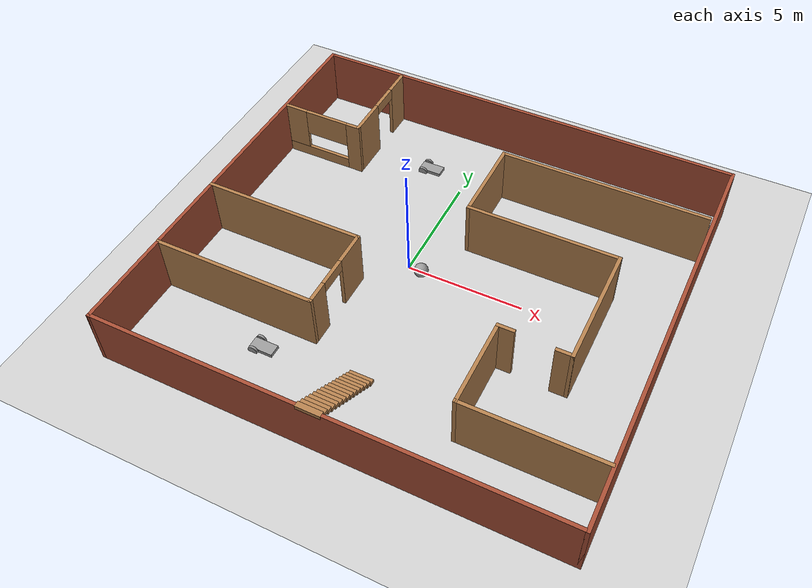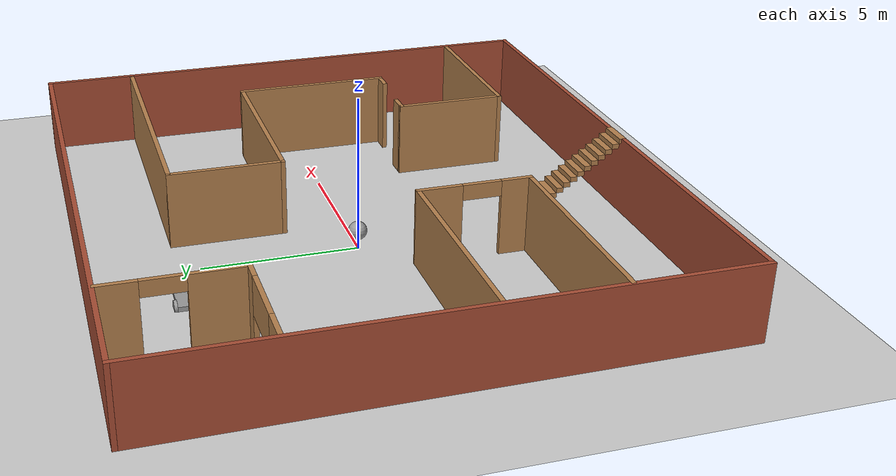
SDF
<sdf version="1.7">
 <world name="default">
  <light name="sun" type="directional">
   <pose>0 0 10 0 -0 0</pose>
   <diffuse>0.8 0.8 0.8 1</diffuse>
   <specular>0.2 0.2 0.2 1</specular>
   <attenuation>
    <range>1000</range>
    <constant>0.9</constant>
    <linear>0.01</linear>
    <quadratic>0.001</quadratic>
   </attenuation>
   <direction>-0.5 0.1 -0.9</direction>
  </light>
  <model name="ground_plane">
   <static>1</static>
   <link name="link">
    <collision name="collision">
     <geometry><plane><normal>0 0 1</normal><size>100 100</size></plane></geometry>
     <surface>
      <contact><collide_bitmask>65535</collide_bitmask></contact>
      <friction><ode><mu>100</mu><mu2>50</mu2></ode></friction>
     </surface>
    </collision>
    <visual name="visual">
     <cast_shadows>0</cast_shadows>
     <geometry><plane><normal>0 0 1</normal><size>100 100</size></plane></geometry>
     <material>
      <script><uri>file://media/materials/scripts/gazebo.material</uri><name>Gazebo/Grey</name></script>
     </material>
    </visual>
   </link>
  </model>
  <gravity>0 0 -9.8</gravity>
  <magnetic_field>6e-06 2.3e-05 -4.2e-05</magnetic_field>
  <atmosphere type="adiabatic"/>
  <physics type="ode">
   <max_step_size>0.001</max_step_size>
   <real_time_factor>1</real_time_factor>
   <real_time_update_rate>1000</real_time_update_rate>
  </physics>
  <scene><ambient>0.4 0.4 0.4 1</ambient><background>0.7 0.7 0.7 1</background><shadows>1</shadows></scene>
  <spherical_coordinates>
   <surface_model>EARTH_WGS84</surface_model>
   <latitude_deg>0</latitude_deg>
   <longitude_deg>0</longitude_deg>
   <elevation>0</elevation>
   <heading_deg>0</heading_deg>
  </spherical_coordinates>
  <model name="my_ball">
   <link name="link_0">
    <inertial>
     <mass>0.0751164</mass>
     <inertia>
      <ixx>0.00133722</ixx>
      <ixy>0</ixy>
      <ixz>0</ixz>
      <iyy>0.00133722</iyy>
      <iyz>0</iyz>
      <izz>0.00133722</izz>
     </inertia>
    </inertial>
    <visual name="visual">
     <geometry><sphere><radius>0.3</radius></sphere></geometry>
     <material>
      <lighting>1</lighting>
      <script><uri>file://media/materials/scripts/gazebo.material</uri><name>Gazebo/Grey</name></script>
      <shader type="pixel"><normal_map>__default__</normal_map></shader>
      <ambient>1 1 1 1</ambient>
      <diffuse>1 1 1 1</diffuse>
      <specular>1 1 1 1</specular>
      <emissive>1 1 1 1</emissive>
     </material>
    </visual>
    <collision name="collision">
     <geometry><sphere><radius>0.3</radius></sphere></geometry>
     <surface>
      <friction>
       <ode><mu>1</mu><mu2>1</mu2><fdir1>0 0 0</fdir1><slip1>0</slip1><slip2>0</slip2></ode>
       <torsional>
        <coefficient>1</coefficient>
        <patch_radius>0</patch_radius>
        <surface_radius>0</surface_radius>
        <use_patch_radius>1</use_patch_radius>
        <ode><slip>0</slip></ode>
       </torsional>
      </friction>
      <bounce><restitution_coefficient>0</restitution_coefficient><threshold>1e+06</threshold></bounce>
      <contact>
       <collide_without_contact>0</collide_without_contact>
       <collide_without_contact_bitmask>1</collide_without_contact_bitmask>
       <collide_bitmask>1</collide_bitmask>
       <ode>
        <soft_cfm>0</soft_cfm>
        <soft_erp>0.2</soft_erp>
        <kp>1e+13</kp>
        <kd>1</kd>
        <max_vel>0.01</max_vel>
        <min_depth>0</min_depth>
       </ode>
       <bullet>
        <split_impulse>1</split_impulse>
        <split_impulse_penetration_threshold>-0.01</split_impulse_penetration_threshold>
        <soft_cfm>0</soft_cfm>
        <soft_erp>0.2</soft_erp>
        <kp>1e+13</kp>
        <kd>1</kd>
       </bullet>
      </contact>
     </surface>
    </collision>
   </link>
   <static>0</static>
   <pose>0.63398 -0.150036 0.3 0 -0 0</pose>
  </model>
  <model name="Building">
   <pose>1.22774 -0.299853 0 0 -0 0</pose>
   <link name="Stairs_0">
    <visual name="Stairs_0_Visual_0">
     <pose>-0.309211 -5.49663 0.083333 0 -0 0</pose>
     <geometry><box><size>1 0.233333 0.166667</size></box></geometry>
     <material>
      <script><uri>file://media/materials/scripts/gazebo.material</uri><name>Gazebo/Wood</name></script>
      <ambient>1 1 1 1</ambient>
     </material>
     <meta><layer>0</layer></meta>
    </visual>
    <collision name="Stairs_0_Collision_0">
     <geometry><box><size>1 0.233333 0.166667</size></box></geometry>
     <pose>-0.309211 -5.49663 0.083333 0 -0 0</pose>
    </collision>
    <visual name="Stairs_0_Visual_1">
     <pose>-0.309211 -5.72996 0.25 0 -0 0</pose>
     <geometry><box><size>1 0.233333 0.166667</size></box></geometry>
     <material>
      <script><uri>file://media/materials/scripts/gazebo.material</uri><name>Gazebo/Wood</name></script>
      <ambient>1 1 1 1</ambient>
     </material>
     <meta><layer>0</layer></meta>
    </visual>
    <collision name="Stairs_0_Collision_1">
     <geometry><box><size>1 0.233333 0.166667</size></box></geometry>
     <pose>-0.309211 -5.72996 0.25 0 -0 0</pose>
    </collision>
    <visual name="Stairs_0_Visual_2">
     <pose>-0.309211 -5.96329 0.416667 0 -0 0</pose>
     <geometry><box><size>1 0.233333 0.166667</size></box></geometry>
     <material>
      <script><uri>file://media/materials/scripts/gazebo.material</uri><name>Gazebo/Wood</name></script>
      <ambient>1 1 1 1</ambient>
     </material>
     <meta><layer>0</layer></meta>
    </visual>
    <collision name="Stairs_0_Collision_2">
     <geometry><box><size>1 0.233333 0.166667</size></box></geometry>
     <pose>-0.309211 -5.96329 0.416667 0 -0 0</pose>
    </collision>
    <visual name="Stairs_0_Visual_3">
     <pose>-0.309211 -6.19663 0.583333 0 -0 0</pose>
     <geometry><box><size>1 0.233333 0.166667</size></box></geometry>
     <material>
      <script><uri>file://media/materials/scripts/gazebo.material</uri><name>Gazebo/Wood</name></script>
      <ambient>1 1 1 1</ambient>
     </material>
     <meta><layer>0</layer></meta>
    </visual>
    <collision name="Stairs_0_Collision_3">
     <geometry><box><size>1 0.233333 0.166667</size></box></geometry>
     <pose>-0.309211 -6.19663 0.583333 0 -0 0</pose>
    </collision>
    <visual name="Stairs_0_Visual_4">
     <pose>-0.309211 -6.42996 0.75 0 -0 0</pose>
     <geometry><box><size>1 0.233333 0.166667</size></box></geometry>
     <material>
      <script><uri>file://media/materials/scripts/gazebo.material</uri><name>Gazebo/Wood</name></script>
      <ambient>1 1 1 1</ambient>
     </material>
     <meta><layer>0</layer></meta>
    </visual>
    <collision name="Stairs_0_Collision_4">
     <geometry><box><size>1 0.233333 0.166667</size></box></geometry>
     <pose>-0.309211 -6.42996 0.75 0 -0 0</pose>
    </collision>
    <visual name="Stairs_0_Visual_5">
     <pose>-0.309211 -6.66329 0.916667 0 -0 0</pose>
     <geometry><box><size>1 0.233333 0.166667</size></box></geometry>
     <material>
      <script><uri>file://media/materials/scripts/gazebo.material</uri><name>Gazebo/Wood</name></script>
      <ambient>1 1 1 1</ambient>
     </material>
     <meta><layer>0</layer></meta>
    </visual>
    <collision name="Stairs_0_Collision_5">
     <geometry><box><size>1 0.233333 0.166667</size></box></geometry>
     <pose>-0.309211 -6.66329 0.916667 0 -0 0</pose>
    </collision>
    <visual name="Stairs_0_Visual_6">
     <pose>-0.309211 -6.89663 1.08333 0 -0 0</pose>
     <geometry><box><size>1 0.233333 0.166667</size></box></geometry>
     <material>
      <script><uri>file://media/materials/scripts/gazebo.material</uri><name>Gazebo/Wood</name></script>
      <ambient>1 1 1 1</ambient>
     </material>
     <meta><layer>0</layer></meta>
    </visual>
    <collision name="Stairs_0_Collision_6">
     <geometry><box><size>1 0.233333 0.166667</size></box></geometry>
     <pose>-0.309211 -6.89663 1.08333 0 -0 0</pose>
    </collision>
    <visual name="Stairs_0_Visual_7">
     <pose>-0.309211 -7.12996 1.25 0 -0 0</pose>
     <geometry><box><size>1 0.233333 0.166667</size></box></geometry>
     <material>
      <script><uri>file://media/materials/scripts/gazebo.material</uri><name>Gazebo/Wood</name></script>
      <ambient>1 1 1 1</ambient>
     </material>
     <meta><layer>0</layer></meta>
    </visual>
    <collision name="Stairs_0_Collision_7">
     <geometry><box><size>1 0.233333 0.166667</size></box></geometry>
     <pose>-0.309211 -7.12996 1.25 0 -0 0</pose>
    </collision>
    <visual name="Stairs_0_Visual_8">
     <pose>-0.309211 -7.36329 1.41667 0 -0 0</pose>
     <geometry><box><size>1 0.233333 0.166667</size></box></geometry>
     <material>
      <script><uri>file://media/materials/scripts/gazebo.material</uri><name>Gazebo/Wood</name></script>
      <ambient>1 1 1 1</ambient>
     </material>
     <meta><layer>0</layer></meta>
    </visual>
    <collision name="Stairs_0_Collision_8">
     <geometry><box><size>1 0.233333 0.166667</size></box></geometry>
     <pose>-0.309211 -7.36329 1.41667 0 -0 0</pose>
    </collision>
    <visual name="Stairs_0_Visual_9">
     <pose>-0.309211 -7.59663 1.58333 0 -0 0</pose>
     <geometry><box><size>1 0.233333 0.166667</size></box></geometry>
     <material>
      <script><uri>file://media/materials/scripts/gazebo.material</uri><name>Gazebo/Wood</name></script>
      <ambient>1 1 1 1</ambient>
     </material>
     <meta><layer>0</layer></meta>
    </visual>
    <collision name="Stairs_0_Collision_9">
     <geometry><box><size>1 0.233333 0.166667</size></box></geometry>
     <pose>-0.309211 -7.59663 1.58333 0 -0 0</pose>
    </collision>
    <visual name="Stairs_0_Visual_10">
     <pose>-0.309211 -7.82996 1.75 0 -0 0</pose>
     <geometry><box><size>1 0.233333 0.166667</size></box></geometry>
     <material>
      <script><uri>file://media/materials/scripts/gazebo.material</uri><name>Gazebo/Wood</name></script>
      <ambient>1 1 1 1</ambient>
     </material>
     <meta><layer>0</layer></meta>
    </visual>
    <collision name="Stairs_0_Collision_10">
     <geometry><box><size>1 0.233333 0.166667</size></box></geometry>
     <pose>-0.309211 -7.82996 1.75 0 -0 0</pose>
    </collision>
    <visual name="Stairs_0_Visual_11">
     <pose>-0.309211 -8.06329 1.91667 0 -0 0</pose>
     <geometry><box><size>1 0.233333 0.166667</size></box></geometry>
     <material>
      <script><uri>file://media/materials/scripts/gazebo.material</uri><name>Gazebo/Wood</name></script>
      <ambient>1 1 1 1</ambient>
     </material>
     <meta><layer>0</layer></meta>
    </visual>
    <collision name="Stairs_0_Collision_11">
     <geometry><box><size>1 0.233333 0.166667</size></box></geometry>
     <pose>-0.309211 -8.06329 1.91667 0 -0 0</pose>
    </collision>
    <visual name="Stairs_0_Visual_12">
     <pose>-0.309211 -8.29663 2.08333 0 -0 0</pose>
     <geometry><box><size>1 0.233333 0.166667</size></box></geometry>
     <material>
      <script><uri>file://media/materials/scripts/gazebo.material</uri><name>Gazebo/Wood</name></script>
      <ambient>1 1 1 1</ambient>
     </material>
     <meta><layer>0</layer></meta>
    </visual>
    <collision name="Stairs_0_Collision_12">
     <geometry><box><size>1 0.233333 0.166667</size></box></geometry>
     <pose>-0.309211 -8.29663 2.08333 0 -0 0</pose>
    </collision>
    <visual name="Stairs_0_Visual_13">
     <pose>-0.309211 -8.52996 2.25 0 -0 0</pose>
     <geometry><box><size>1 0.233333 0.166667</size></box></geometry>
     <material>
      <script><uri>file://media/materials/scripts/gazebo.material</uri><name>Gazebo/Wood</name></script>
      <ambient>1 1 1 1</ambient>
     </material>
     <meta><layer>0</layer></meta>
    </visual>
    <collision name="Stairs_0_Collision_13">
     <geometry><box><size>1 0.233333 0.166667</size></box></geometry>
     <pose>-0.309211 -8.52996 2.25 0 -0 0</pose>
    </collision>
    <visual name="Stairs_0_Visual_14">
     <pose>-0.309211 -8.76329 2.41667 0 -0 0</pose>
     <geometry><box><size>1 0.233333 0.166667</size></box></geometry>
     <material>
      <script><uri>file://media/materials/scripts/gazebo.material</uri><name>Gazebo/Wood</name></script>
      <ambient>1 1 1 1</ambient>
     </material>
     <meta><layer>0</layer></meta>
    </visual>
    <collision name="Stairs_0_Collision_14">
     <geometry><box><size>1 0.233333 0.166667</size></box></geometry>
     <pose>-0.309211 -8.76329 2.41667 0 -0 0</pose>
    </collision>
   </link>
   <link name="Wall_10">
    <collision name="Wall_10_Collision">
     <geometry><box><size>17.75 0.15 2.5</size></box></geometry>
     <pose>0 0 1.25 0 -0 0</pose>
    </collision>
    <visual name="Wall_10_Visual">
     <pose>0 0 1.25 0 -0 0</pose>
     <geometry><box><size>17.75 0.15 2.5</size></box></geometry>
     <material>
      <script><uri>file://media/materials/scripts/gazebo.material</uri><name>Gazebo/Bricks</name></script>
      <ambient>1 1 1 1</ambient>
     </material>
     <meta><layer>0</layer></meta>
    </visual>
    <pose>9.55 0.004959 0 0 -0 1.5708</pose>
   </link>
   <link name="Wall_11">
    <collision name="Wall_11_Collision">
     <geometry><box><size>19.25 0.15 2.5</size></box></geometry>
     <pose>0 0 1.25 0 -0 0</pose>
    </collision>
    <visual name="Wall_11_Visual">
     <pose>0 0 1.25 0 -0 0</pose>
     <geometry><box><size>19.25 0.15 2.5</size></box></geometry>
     <material>
      <script><uri>file://media/materials/scripts/gazebo.material</uri><name>Gazebo/Bricks</name></script>
      <ambient>1 1 1 1</ambient>
     </material>
     <meta><layer>0</layer></meta>
    </visual>
    <pose>-0 8.80496 0 0 -0 3.14159</pose>
   </link>
   <link name="Wall_14">
    <pose>-5.87223 6.68557 0 0 -0 -1.5708</pose>
    <visual name="Wall_14_Visual_0">
     <pose>-1.52124 0 1.25 0 -0 0</pose>
     <geometry><box><size>1.20753 0.15 2.5</size></box></geometry>
     <material>
      <script><uri>file://media/materials/scripts/gazebo.material</uri><name>Gazebo/Wood</name></script>
      <ambient>1 1 1 1</ambient>
     </material>
     <meta><layer>0</layer></meta>
    </visual>
    <collision name="Wall_14_Collision_0">
     <geometry><box><size>1.20753 0.15 2.5</size></box></geometry>
     <pose>-1.52124 0 1.25 0 -0 0</pose>
    </collision>
    <visual name="Wall_14_Visual_1">
     <pose>1.24351 0 1.25 0 -0 0</pose>
     <geometry><box><size>1.76297 0.15 2.5</size></box></geometry>
     <material>
      <script><uri>file://media/materials/scripts/gazebo.material</uri><name>Gazebo/Wood</name></script>
      <ambient>1 1 1 1</ambient>
     </material>
     <meta><layer>0</layer></meta>
    </visual>
    <collision name="Wall_14_Collision_1">
     <geometry><box><size>1.76297 0.15 2.5</size></box></geometry>
     <pose>1.24351 0 1.25 0 -0 0</pose>
    </collision>
    <visual name="Wall_14_Visual_2">
     <pose>-0.277724 0 2.25 0 -0 0</pose>
     <geometry><box><size>1.2795 0.15 0.5</size></box></geometry>
     <material>
      <script><uri>file://media/materials/scripts/gazebo.material</uri><name>Gazebo/Wood</name></script>
      <ambient>1 1 1 1</ambient>
     </material>
     <meta><layer>0</layer></meta>
    </visual>
    <collision name="Wall_14_Collision_2">
     <geometry><box><size>1.2795 0.15 0.5</size></box></geometry>
     <pose>-0.277724 0 2.25 0 -0 0</pose>
    </collision>
   </link>
   <link name="Wall_15">
    <pose>-7.67223 4.63557 0 0 -0 3.14159</pose>
    <visual name="Wall_15_Visual_0">
     <pose>-1.54151 0 1.25 0 -0 0</pose>
     <geometry><box><size>0.666977 0.15 2.5</size></box></geometry>
     <material>
      <script><uri>file://media/materials/scripts/gazebo.material</uri><name>Gazebo/Wood</name></script>
      <ambient>1 1 1 1</ambient>
     </material>
     <meta><layer>0</layer></meta>
    </visual>
    <collision name="Wall_15_Collision_0">
     <geometry><box><size>0.666977 0.15 2.5</size></box></geometry>
     <pose>-1.54151 0 1.25 0 -0 0</pose>
    </collision>
    <visual name="Wall_15_Visual_1">
     <pose>0.333489 0 0.25 0 -0 0</pose>
     <geometry><box><size>3.08302 0.15 0.5</size></box></geometry>
     <material>
      <script><uri>file://media/materials/scripts/gazebo.material</uri><name>Gazebo/Wood</name></script>
      <ambient>1 1 1 1</ambient>
     </material>
     <meta><layer>0</layer></meta>
    </visual>
    <collision name="Wall_15_Collision_1">
     <geometry><box><size>3.08302 0.15 0.5</size></box></geometry>
     <pose>0.333489 0 0.25 0 -0 0</pose>
    </collision>
    <visual name="Wall_15_Visual_2">
     <pose>1.33724 0 1.5 0 -0 0</pose>
     <geometry><box><size>1.07552 0.15 2</size></box></geometry>
     <material>
      <script><uri>file://media/materials/scripts/gazebo.material</uri><name>Gazebo/Wood</name></script>
      <ambient>1 1 1 1</ambient>
     </material>
     <meta><layer>0</layer></meta>
    </visual>
    <collision name="Wall_15_Collision_2">
     <geometry><box><size>1.07552 0.15 2</size></box></geometry>
     <pose>1.33724 0 1.5 0 -0 0</pose>
    </collision>
    <visual name="Wall_15_Visual_3">
     <pose>-0.204273 0 1.9 0 -0 0</pose>
     <geometry><box><size>2.0075 0.15 1.2</size></box></geometry>
     <material>
      <script><uri>file://media/materials/scripts/gazebo.material</uri><name>Gazebo/Wood</name></script>
      <ambient>1 1 1 1</ambient>
     </material>
     <meta><layer>0</layer></meta>
    </visual>
    <collision name="Wall_15_Collision_3">
     <geometry><box><size>2.0075 0.15 1.2</size></box></geometry>
     <pose>-0.204273 0 1.9 0 -0 0</pose>
    </collision>
   </link>
   <link name="Wall_17">
    <collision name="Wall_17_Collision">
     <geometry><box><size>7 0.15 2.5</size></box></geometry>
     <pose>0 0 1.25 0 -0 0</pose>
    </collision>
    <visual name="Wall_17_Visual">
     <pose>0 0 1.25 0 -0 0</pose>
     <geometry><box><size>7 0.15 2.5</size></box></geometry>
     <material>
      <script><uri>file://media/materials/scripts/gazebo.material</uri><name>Gazebo/Wood</name></script>
      <ambient>1 1 1 1</ambient>
     </material>
     <meta><layer>0</layer></meta>
    </visual>
    <pose>-6.125 -1.11807 0 0 -0 0</pose>
   </link>
   <link name="Wall_18">
    <pose>-2.7 -2.91807 0 0 -0 -1.5708</pose>
    <visual name="Wall_18_Visual_0">
     <pose>-1.13518 0 1.25 0 -0 0</pose>
     <geometry><box><size>1.47964 0.15 2.5</size></box></geometry>
     <material>
      <script><uri>file://media/materials/scripts/gazebo.material</uri><name>Gazebo/Wood</name></script>
      <ambient>1 1 1 1</ambient>
     </material>
     <meta><layer>0</layer></meta>
    </visual>
    <collision name="Wall_18_Collision_0">
     <geometry><box><size>1.47964 0.15 2.5</size></box></geometry>
     <pose>-1.13518 0 1.25 0 -0 0</pose>
    </collision>
    <visual name="Wall_18_Visual_1">
     <pose>1.36232 0 1.25 0 -0 0</pose>
     <geometry><box><size>1.02536 0.15 2.5</size></box></geometry>
     <material>
      <script><uri>file://media/materials/scripts/gazebo.material</uri><name>Gazebo/Wood</name></script>
      <ambient>1 1 1 1</ambient>
     </material>
     <meta><layer>0</layer></meta>
    </visual>
    <collision name="Wall_18_Collision_1">
     <geometry><box><size>1.02536 0.15 2.5</size></box></geometry>
     <pose>1.36232 0 1.25 0 -0 0</pose>
    </collision>
    <visual name="Wall_18_Visual_2">
     <pose>0.227138 0 2.25 0 -0 0</pose>
     <geometry><box><size>1.245 0.15 0.5</size></box></geometry>
     <material>
      <script><uri>file://media/materials/scripts/gazebo.material</uri><name>Gazebo/Wood</name></script>
      <ambient>1 1 1 1</ambient>
     </material>
     <meta><layer>0</layer></meta>
    </visual>
    <collision name="Wall_18_Collision_2">
     <geometry><box><size>1.245 0.15 0.5</size></box></geometry>
     <pose>0.227138 0 2.25 0 -0 0</pose>
    </collision>
   </link>
   <link name="Wall_19">
    <collision name="Wall_19_Collision">
     <geometry><box><size>7 0.15 2.5</size></box></geometry>
     <pose>0 0 1.25 0 -0 0</pose>
    </collision>
    <visual name="Wall_19_Visual">
     <pose>0 0 1.25 0 -0 0</pose>
     <geometry><box><size>7 0.15 2.5</size></box></geometry>
     <material>
      <script><uri>file://media/materials/scripts/gazebo.material</uri><name>Gazebo/Wood</name></script>
      <ambient>1 1 1 1</ambient>
     </material>
     <meta><layer>0</layer></meta>
    </visual>
    <pose>-6.125 -4.71807 0 0 -0 3.14159</pose>
   </link>
   <link name="Wall_21">
    <collision name="Wall_21_Collision">
     <geometry><box><size>5.75 0.15 2.5</size></box></geometry>
     <pose>0 0 1.25 0 -0 0</pose>
    </collision>
    <visual name="Wall_21_Visual">
     <pose>0 0 1.25 0 -0 0</pose>
     <geometry><box><size>5.75 0.15 2.5</size></box></geometry>
     <material>
      <script><uri>file://media/materials/scripts/gazebo.material</uri><name>Gazebo/Wood</name></script>
      <ambient>1 1 1 1</ambient>
     </material>
     <meta><layer>0</layer></meta>
    </visual>
    <pose>6.73275 -6.32246 0 0 -0 3.14159</pose>
   </link>
   <link name="Wall_22">
    <collision name="Wall_22_Collision">
     <geometry><box><size>3.75 0.15 2.5</size></box></geometry>
     <pose>0 0 1.25 0 -0 0</pose>
    </collision>
    <visual name="Wall_22_Visual">
     <pose>0 0 1.25 0 -0 0</pose>
     <geometry><box><size>3.75 0.15 2.5</size></box></geometry>
     <material>
      <script><uri>file://media/materials/scripts/gazebo.material</uri><name>Gazebo/Wood</name></script>
      <ambient>1 1 1 1</ambient>
     </material>
     <meta><layer>0</layer></meta>
    </visual>
    <pose>3.93275 -4.52246 0 0 -0 1.5708</pose>
   </link>
   <link name="Wall_27">
    <collision name="Wall_27_Collision">
     <geometry><box><size>0.75 0.15 2.5</size></box></geometry>
     <pose>0 0 1.25 0 -0 0</pose>
    </collision>
    <visual name="Wall_27_Visual">
     <pose>0 0 1.25 0 -0 0</pose>
     <geometry><box><size>0.75 0.15 2.5</size></box></geometry>
     <material>
      <script><uri>file://media/materials/scripts/gazebo.material</uri><name>Gazebo/Wood</name></script>
      <ambient>1 1 1 1</ambient>
     </material>
     <meta><layer>0</layer></meta>
    </visual>
    <pose>4.23275 -2.72246 0 0 -0 0</pose>
   </link>
   <link name="Wall_29">
    <collision name="Wall_29_Collision">
     <geometry><box><size>0.75 0.15 2.5</size></box></geometry>
     <pose>0 0 1.25 0 -0 0</pose>
    </collision>
    <visual name="Wall_29_Visual">
     <pose>0 0 1.25 0 -0 0</pose>
     <geometry><box><size>0.75 0.15 2.5</size></box></geometry>
     <material>
      <script><uri>file://media/materials/scripts/gazebo.material</uri><name>Gazebo/Wood</name></script>
      <ambient>1 1 1 1</ambient>
     </material>
     <meta><layer>0</layer></meta>
    </visual>
    <pose>6.54579 -2.81746 0 0 -0 0</pose>
   </link>
   <link name="Wall_30">
    <collision name="Wall_30_Collision">
     <geometry><box><size>5.25 0.15 2.5</size></box></geometry>
     <pose>0 0 1.25 0 -0 0</pose>
    </collision>
    <visual name="Wall_30_Visual">
     <pose>0 0 1.25 0 -0 0</pose>
     <geometry><box><size>5.25 0.15 2.5</size></box></geometry>
     <material>
      <script><uri>file://media/materials/scripts/gazebo.material</uri><name>Gazebo/Wood</name></script>
      <ambient>1 1 1 1</ambient>
     </material>
     <meta><layer>0</layer></meta>
    </visual>
    <pose>6.84579 -0.267459 0 0 -0 1.5708</pose>
   </link>
   <link name="Wall_31">
    <collision name="Wall_31_Collision">
     <geometry><box><size>6.5 0.15 2.5</size></box></geometry>
     <pose>0 0 1.25 0 -0 0</pose>
    </collision>
    <visual name="Wall_31_Visual">
     <pose>0 0 1.25 0 -0 0</pose>
     <geometry><box><size>6.5 0.15 2.5</size></box></geometry>
     <material>
      <script><uri>file://media/materials/scripts/gazebo.material</uri><name>Gazebo/Wood</name></script>
      <ambient>1 1 1 1</ambient>
     </material>
     <meta><layer>0</layer></meta>
    </visual>
    <pose>3.67079 2.28254 0 0 -0 3.14159</pose>
   </link>
   <link name="Wall_32">
    <collision name="Wall_32_Collision">
     <geometry><box><size>3.75 0.15 2.5</size></box></geometry>
     <pose>0 0 1.25 0 -0 0</pose>
    </collision>
    <visual name="Wall_32_Visual">
     <pose>0 0 1.25 0 -0 0</pose>
     <geometry><box><size>3.75 0.15 2.5</size></box></geometry>
     <material>
      <script><uri>file://media/materials/scripts/gazebo.material</uri><name>Gazebo/Wood</name></script>
      <ambient>1 1 1 1</ambient>
     </material>
     <meta><layer>0</layer></meta>
    </visual>
    <pose>0.495789 4.08254 0 0 -0 1.5708</pose>
   </link>
   <link name="Wall_33">
    <collision name="Wall_33_Collision">
     <geometry><box><size>9 0.15 2.5</size></box></geometry>
     <pose>0 0 1.25 0 -0 0</pose>
    </collision>
    <visual name="Wall_33_Visual">
     <pose>0 0 1.25 0 -0 0</pose>
     <geometry><box><size>9 0.15 2.5</size></box></geometry>
     <material>
      <script><uri>file://media/materials/scripts/gazebo.material</uri><name>Gazebo/Wood</name></script>
      <ambient>1 1 1 1</ambient>
     </material>
     <meta><layer>0</layer></meta>
    </visual>
    <pose>4.92079 5.88254 0 0 -0 0</pose>
   </link>
   <link name="Wall_8">
    <collision name="Wall_8_Collision">
     <geometry><box><size>17.75 0.15 2.5</size></box></geometry>
     <pose>0 0 1.25 0 -0 0</pose>
    </collision>
    <visual name="Wall_8_Visual">
     <pose>0 0 1.25 0 -0 0</pose>
     <geometry><box><size>17.75 0.15 2.5</size></box></geometry>
     <material>
      <script><uri>file://media/materials/scripts/gazebo.material</uri><name>Gazebo/Bricks</name></script>
      <ambient>1 1 1 1</ambient>
     </material>
     <meta><layer>0</layer></meta>
    </visual>
    <pose>-9.55 0.004959 0 0 -0 -1.5708</pose>
   </link>
   <link name="Wall_9">
    <collision name="Wall_9_Collision">
     <geometry><box><size>19.25 0.15 2.5</size></box></geometry>
     <pose>0 0 1.25 0 -0 0</pose>
    </collision>
    <visual name="Wall_9_Visual">
     <pose>0 0 1.25 0 -0 0</pose>
     <geometry><box><size>19.25 0.15 2.5</size></box></geometry>
     <material>
      <script><uri>file://media/materials/scripts/gazebo.material</uri><name>Gazebo/Bricks</name></script>
      <ambient>1 1 1 1</ambient>
     </material>
     <meta><layer>0</layer></meta>
    </visual>
    <pose>-0 -8.79504 0 0 -0 0</pose>
   </link>
   <static>1</static>
  </model>
  <model name="Car">
   <link name="link_0">
    <inertial>
     <mass>1</mass>
     <inertia>
      <ixx>0.166667</ixx>
      <ixy>0</ixy>
      <ixz>0</ixz>
      <iyy>0.166667</iyy>
      <iyz>0</iyz>
      <izz>0.166667</izz>
     </inertia>
    </inertial>
    <pose>0.06 0.01125 0.02296 0 -0 0</pose>
    <visual name="visual">
     <geometry><box><size>1 0.5 0.2</size></box></geometry>
     <material>
      <lighting>1</lighting>
      <script><uri>file://media/materials/scripts/gazebo.material</uri><name>Gazebo/Grey</name></script>
      <shader type="pixel"><normal_map>__default__</normal_map></shader>
      <ambient>0.3 0.3 0.3 1</ambient>
      <diffuse>0.7 0.7 0.7 1</diffuse>
      <specular>0.01 0.01 0.01 1</specular>
      <emissive>0 0 0 1</emissive>
     </material>
    </visual>
    <collision name="collision">
     <geometry><box><size>1 0.5 0.2</size></box></geometry>
     <surface>
      <friction>
       <ode><mu>1</mu><mu2>1</mu2><fdir1>0 0 0</fdir1><slip1>0</slip1><slip2>0</slip2></ode>
       <torsional>
        <coefficient>1</coefficient>
        <patch_radius>0</patch_radius>
        <surface_radius>0</surface_radius>
        <use_patch_radius>1</use_patch_radius>
        <ode><slip>0</slip></ode>
       </torsional>
      </friction>
      <bounce><restitution_coefficient>0</restitution_coefficient><threshold>1e+06</threshold></bounce>
      <contact>
       <collide_without_contact>0</collide_without_contact>
       <collide_without_contact_bitmask>1</collide_without_contact_bitmask>
       <collide_bitmask>1</collide_bitmask>
       <ode>
        <soft_cfm>0</soft_cfm>
        <soft_erp>0.2</soft_erp>
        <kp>1e+13</kp>
        <kd>1</kd>
        <max_vel>0.01</max_vel>
        <min_depth>0</min_depth>
       </ode>
       <bullet>
        <split_impulse>1</split_impulse>
        <split_impulse_penetration_threshold>-0.01</split_impulse_penetration_threshold>
        <soft_cfm>0</soft_cfm>
        <soft_erp>0.2</soft_erp>
        <kp>1e+13</kp>
        <kd>1</kd>
       </bullet>
      </contact>
     </surface>
    </collision>
   </link>
   <link name="link_1">
    <inertial>
     <mass>1</mass>
     <inertia><ixx>0.145833</ixx><ixy>0</ixy><ixz>0</ixz><iyy>0.145833</iyy><iyz>0</iyz><izz>0.125</izz></inertia>
    </inertial>
    <pose>-0.24 -0.288769 0.042955 1.5707 -0 0</pose>
    <visual name="visual">
     <geometry><cylinder><radius>0.2</radius><length>0.1</length></cylinder></geometry>
     <material>
      <lighting>1</lighting>
      <script><uri>file://media/materials/scripts/gazebo.material</uri><name>Gazebo/Grey</name></script>
      <shader type="pixel"><normal_map>__default__</normal_map></shader>
      <ambient>0.3 0.3 0.3 1</ambient>
      <diffuse>0.7 0.7 0.7 1</diffuse>
      <specular>0.01 0.01 0.01 1</specular>
      <emissive>0 0 0 1</emissive>
     </material>
    </visual>
    <collision name="collision">
     <geometry><cylinder><radius>0.2</radius><length>0.1</length></cylinder></geometry>
     <surface>
      <friction>
       <ode><mu>1</mu><mu2>1</mu2><fdir1>0 0 0</fdir1><slip1>0</slip1><slip2>0</slip2></ode>
       <torsional>
        <coefficient>1</coefficient>
        <patch_radius>0</patch_radius>
        <surface_radius>0</surface_radius>
        <use_patch_radius>1</use_patch_radius>
        <ode><slip>0</slip></ode>
       </torsional>
      </friction>
      <bounce><restitution_coefficient>0</restitution_coefficient><threshold>1e+06</threshold></bounce>
      <contact>
       <collide_without_contact>0</collide_without_contact>
       <collide_without_contact_bitmask>1</collide_without_contact_bitmask>
       <collide_bitmask>1</collide_bitmask>
       <ode>
        <soft_cfm>0</soft_cfm>
        <soft_erp>0.2</soft_erp>
        <kp>1e+13</kp>
        <kd>1</kd>
        <max_vel>0.01</max_vel>
        <min_depth>0</min_depth>
       </ode>
       <bullet>
        <split_impulse>1</split_impulse>
        <split_impulse_penetration_threshold>-0.01</split_impulse_penetration_threshold>
        <soft_cfm>0</soft_cfm>
        <soft_erp>0.2</soft_erp>
        <kp>1e+13</kp>
        <kd>1</kd>
       </bullet>
      </contact>
     </surface>
    </collision>
   </link>
   <link name="link_1_clone">
    <inertial>
     <mass>1</mass>
     <inertia><ixx>0.145833</ixx><ixy>0</ixy><ixz>0</ixz><iyy>0.145833</iyy><iyz>0</iyz><izz>0.125</izz></inertia>
    </inertial>
    <pose>-0.24 0.311269 0.04296 1.5707 -0 0</pose>
    <visual name="visual">
     <geometry><cylinder><radius>0.2</radius><length>0.1</length></cylinder></geometry>
     <material>
      <lighting>1</lighting>
      <script><uri>file://media/materials/scripts/gazebo.material</uri><name>Gazebo/Grey</name></script>
      <shader type="pixel"><normal_map>__default__</normal_map></shader>
      <ambient>0.3 0.3 0.3 1</ambient>
      <diffuse>0.7 0.7 0.7 1</diffuse>
      <specular>0.01 0.01 0.01 1</specular>
      <emissive>0 0 0 1</emissive>
     </material>
    </visual>
    <collision name="collision">
     <geometry><cylinder><radius>0.2</radius><length>0.1</length></cylinder></geometry>
     <surface>
      <friction>
       <ode><mu>1</mu><mu2>1</mu2><fdir1>0 0 0</fdir1><slip1>0</slip1><slip2>0</slip2></ode>
       <torsional>
        <coefficient>1</coefficient>
        <patch_radius>0</patch_radius>
        <surface_radius>0</surface_radius>
        <use_patch_radius>1</use_patch_radius>
        <ode><slip>0</slip></ode>
       </torsional>
      </friction>
      <bounce><restitution_coefficient>0</restitution_coefficient><threshold>1e+06</threshold></bounce>
      <contact>
       <collide_without_contact>0</collide_without_contact>
       <collide_without_contact_bitmask>1</collide_without_contact_bitmask>
       <collide_bitmask>1</collide_bitmask>
       <ode>
        <soft_cfm>0</soft_cfm>
        <soft_erp>0.2</soft_erp>
        <kp>1e+13</kp>
        <kd>1</kd>
        <max_vel>0.01</max_vel>
        <min_depth>0</min_depth>
       </ode>
       <bullet>
        <split_impulse>1</split_impulse>
        <split_impulse_penetration_threshold>-0.01</split_impulse_penetration_threshold>
        <soft_cfm>0</soft_cfm>
        <soft_erp>0.2</soft_erp>
        <kp>1e+13</kp>
        <kd>1</kd>
       </bullet>
      </contact>
     </surface>
    </collision>
   </link>
   <link name="link_2">
    <inertial>
     <mass>0.0345164</mass>
     <inertia>
      <ixx>0.00036594</ixx>
      <ixy>0</ixy>
      <ixz>0</ixz>
      <iyy>0.00036594</iyy>
      <iyz>0</iyz>
      <izz>0.00036594</izz>
     </inertia>
    </inertial>
    <pose>0.42 0.01125 -0.108874 0 -0 0</pose>
    <visual name="visual">
     <geometry><sphere><radius>0.0500001</radius></sphere></geometry>
     <material>
      <lighting>1</lighting>
      <script><uri>file://media/materials/scripts/gazebo.material</uri><name>Gazebo/Grey</name></script>
      <shader type="pixel"><normal_map>__default__</normal_map></shader>
      <ambient>0.3 0.3 0.3 1</ambient>
      <diffuse>0.7 0.7 0.7 1</diffuse>
      <specular>0.01 0.01 0.01 1</specular>
      <emissive>0 0 0 1</emissive>
     </material>
    </visual>
    <collision name="collision">
     <geometry><sphere><radius>0.05</radius></sphere></geometry>
     <surface>
      <friction>
       <ode><mu>1</mu><mu2>1</mu2><fdir1>0 0 0</fdir1><slip1>0</slip1><slip2>0</slip2></ode>
       <torsional>
        <coefficient>1</coefficient>
        <patch_radius>0</patch_radius>
        <surface_radius>0</surface_radius>
        <use_patch_radius>1</use_patch_radius>
        <ode><slip>0</slip></ode>
       </torsional>
      </friction>
      <bounce><restitution_coefficient>0</restitution_coefficient><threshold>1e+06</threshold></bounce>
      <contact>
       <collide_without_contact>0</collide_without_contact>
       <collide_without_contact_bitmask>1</collide_without_contact_bitmask>
       <collide_bitmask>1</collide_bitmask>
       <ode>
        <soft_cfm>0</soft_cfm>
        <soft_erp>0.2</soft_erp>
        <kp>1e+13</kp>
        <kd>1</kd>
        <max_vel>0.01</max_vel>
        <min_depth>0</min_depth>
       </ode>
       <bullet>
        <split_impulse>1</split_impulse>
        <split_impulse_penetration_threshold>-0.01</split_impulse_penetration_threshold>
        <soft_cfm>0</soft_cfm>
        <soft_erp>0.2</soft_erp>
        <kp>1e+13</kp>
        <kd>1</kd>
       </bullet>
      </contact>
     </surface>
    </collision>
   </link>
   <joint name="link_0_JOINT_0" type="revolute">
    <parent>link_0</parent>
    <child>link_1_clone</child>
    <axis>
     <xyz>0 0 1</xyz>
     <limit>
      <lower>-1.79769e+308</lower>
      <upper>1.79769e+308</upper>
      <effort>-1</effort>
      <velocity>-1</velocity>
     </limit>
     <dynamics>
      <spring_reference>0</spring_reference>
      <spring_stiffness>0</spring_stiffness>
      <damping>0</damping>
     </dynamics>
    </axis>
    <physics>
     <ode><limit><cfm>0</cfm><erp>0.2</erp></limit><suspension><cfm>0</cfm><erp>0.2</erp></suspension></ode>
    </physics>
   </joint>
   <joint name="link_0_JOINT_1" type="revolute">
    <parent>link_0</parent>
    <child>link_1</child>
    <axis>
     <xyz>0 0 1</xyz>
     <limit>
      <lower>-1.79769e+308</lower>
      <upper>1.79769e+308</upper>
      <effort>-1</effort>
      <velocity>-1</velocity>
     </limit>
     <dynamics>
      <spring_reference>0</spring_reference>
      <spring_stiffness>0</spring_stiffness>
      <damping>0</damping>
     </dynamics>
    </axis>
    <physics>
     <ode><limit><cfm>0</cfm><erp>0.2</erp></limit><suspension><cfm>0</cfm><erp>0.2</erp></suspension></ode>
    </physics>
   </joint>
   <joint name="link_0_JOINT_2" type="ball">
    <parent>link_0</parent>
    <child>link_2</child>
    <physics>
     <ode><limit><cfm>0</cfm><erp>0.2</erp></limit><suspension><cfm>0</cfm><erp>0.2</erp></suspension></ode>
    </physics>
   </joint>
   <static>0</static>
   <pose>-3.18309 -6.14501 0 0 -0 0</pose>
  </model>
  <model name="Car_0">
   <link name="link_0">
    <inertial>
     <mass>1</mass>
     <inertia>
      <ixx>0.166667</ixx>
      <ixy>0</ixy>
      <ixz>0</ixz>
      <iyy>0.166667</iyy>
      <iyz>0</iyz>
      <izz>0.166667</izz>
     </inertia>
    </inertial>
    <pose>0.06 0.01125 0.02296 0 -0 0</pose>
    <visual name="visual">
     <geometry><box><size>1 0.5 0.2</size></box></geometry>
     <material>
      <lighting>1</lighting>
      <script><uri>file://media/materials/scripts/gazebo.material</uri><name>Gazebo/Grey</name></script>
      <shader type="pixel"><normal_map>__default__</normal_map></shader>
      <ambient>0.3 0.3 0.3 1</ambient>
      <diffuse>0.7 0.7 0.7 1</diffuse>
      <specular>0.01 0.01 0.01 1</specular>
      <emissive>0 0 0 1</emissive>
     </material>
    </visual>
    <collision name="collision">
     <geometry><box><size>1 0.5 0.2</size></box></geometry>
     <surface>
      <friction>
       <ode><mu>1</mu><mu2>1</mu2><fdir1>0 0 0</fdir1><slip1>0</slip1><slip2>0</slip2></ode>
       <torsional>
        <coefficient>1</coefficient>
        <patch_radius>0</patch_radius>
        <surface_radius>0</surface_radius>
        <use_patch_radius>1</use_patch_radius>
        <ode><slip>0</slip></ode>
       </torsional>
      </friction>
      <bounce><restitution_coefficient>0</restitution_coefficient><threshold>1e+06</threshold></bounce>
      <contact>
       <collide_without_contact>0</collide_without_contact>
       <collide_without_contact_bitmask>1</collide_without_contact_bitmask>
       <collide_bitmask>1</collide_bitmask>
       <ode>
        <soft_cfm>0</soft_cfm>
        <soft_erp>0.2</soft_erp>
        <kp>1e+13</kp>
        <kd>1</kd>
        <max_vel>0.01</max_vel>
        <min_depth>0</min_depth>
       </ode>
       <bullet>
        <split_impulse>1</split_impulse>
        <split_impulse_penetration_threshold>-0.01</split_impulse_penetration_threshold>
        <soft_cfm>0</soft_cfm>
        <soft_erp>0.2</soft_erp>
        <kp>1e+13</kp>
        <kd>1</kd>
       </bullet>
      </contact>
     </surface>
    </collision>
   </link>
   <link name="link_1">
    <inertial>
     <mass>1</mass>
     <inertia><ixx>0.145833</ixx><ixy>0</ixy><ixz>0</ixz><iyy>0.145833</iyy><iyz>0</iyz><izz>0.125</izz></inertia>
    </inertial>
    <pose>-0.24 -0.288769 0.042955 1.5707 -0 0</pose>
    <visual name="visual">
     <geometry><cylinder><radius>0.2</radius><length>0.1</length></cylinder></geometry>
     <material>
      <lighting>1</lighting>
      <script><uri>file://media/materials/scripts/gazebo.material</uri><name>Gazebo/Grey</name></script>
      <shader type="pixel"><normal_map>__default__</normal_map></shader>
      <ambient>0.3 0.3 0.3 1</ambient>
      <diffuse>0.7 0.7 0.7 1</diffuse>
      <specular>0.01 0.01 0.01 1</specular>
      <emissive>0 0 0 1</emissive>
     </material>
    </visual>
    <collision name="collision">
     <geometry><cylinder><radius>0.2</radius><length>0.1</length></cylinder></geometry>
     <surface>
      <friction>
       <ode><mu>1</mu><mu2>1</mu2><fdir1>0 0 0</fdir1><slip1>0</slip1><slip2>0</slip2></ode>
       <torsional>
        <coefficient>1</coefficient>
        <patch_radius>0</patch_radius>
        <surface_radius>0</surface_radius>
        <use_patch_radius>1</use_patch_radius>
        <ode><slip>0</slip></ode>
       </torsional>
      </friction>
      <bounce><restitution_coefficient>0</restitution_coefficient><threshold>1e+06</threshold></bounce>
      <contact>
       <collide_without_contact>0</collide_without_contact>
       <collide_without_contact_bitmask>1</collide_without_contact_bitmask>
       <collide_bitmask>1</collide_bitmask>
       <ode>
        <soft_cfm>0</soft_cfm>
        <soft_erp>0.2</soft_erp>
        <kp>1e+13</kp>
        <kd>1</kd>
        <max_vel>0.01</max_vel>
        <min_depth>0</min_depth>
       </ode>
       <bullet>
        <split_impulse>1</split_impulse>
        <split_impulse_penetration_threshold>-0.01</split_impulse_penetration_threshold>
        <soft_cfm>0</soft_cfm>
        <soft_erp>0.2</soft_erp>
        <kp>1e+13</kp>
        <kd>1</kd>
       </bullet>
      </contact>
     </surface>
    </collision>
   </link>
   <link name="link_1_clone">
    <inertial>
     <mass>1</mass>
     <inertia><ixx>0.145833</ixx><ixy>0</ixy><ixz>0</ixz><iyy>0.145833</iyy><iyz>0</iyz><izz>0.125</izz></inertia>
    </inertial>
    <pose>-0.24 0.311269 0.04296 1.5707 -0 0</pose>
    <visual name="visual">
     <geometry><cylinder><radius>0.2</radius><length>0.1</length></cylinder></geometry>
     <material>
      <lighting>1</lighting>
      <script><uri>file://media/materials/scripts/gazebo.material</uri><name>Gazebo/Grey</name></script>
      <shader type="pixel"><normal_map>__default__</normal_map></shader>
      <ambient>0.3 0.3 0.3 1</ambient>
      <diffuse>0.7 0.7 0.7 1</diffuse>
      <specular>0.01 0.01 0.01 1</specular>
      <emissive>0 0 0 1</emissive>
     </material>
    </visual>
    <collision name="collision">
     <geometry><cylinder><radius>0.2</radius><length>0.1</length></cylinder></geometry>
     <surface>
      <friction>
       <ode><mu>1</mu><mu2>1</mu2><fdir1>0 0 0</fdir1><slip1>0</slip1><slip2>0</slip2></ode>
       <torsional>
        <coefficient>1</coefficient>
        <patch_radius>0</patch_radius>
        <surface_radius>0</surface_radius>
        <use_patch_radius>1</use_patch_radius>
        <ode><slip>0</slip></ode>
       </torsional>
      </friction>
      <bounce><restitution_coefficient>0</restitution_coefficient><threshold>1e+06</threshold></bounce>
      <contact>
       <collide_without_contact>0</collide_without_contact>
       <collide_without_contact_bitmask>1</collide_without_contact_bitmask>
       <collide_bitmask>1</collide_bitmask>
       <ode>
        <soft_cfm>0</soft_cfm>
        <soft_erp>0.2</soft_erp>
        <kp>1e+13</kp>
        <kd>1</kd>
        <max_vel>0.01</max_vel>
        <min_depth>0</min_depth>
       </ode>
       <bullet>
        <split_impulse>1</split_impulse>
        <split_impulse_penetration_threshold>-0.01</split_impulse_penetration_threshold>
        <soft_cfm>0</soft_cfm>
        <soft_erp>0.2</soft_erp>
        <kp>1e+13</kp>
        <kd>1</kd>
       </bullet>
      </contact>
     </surface>
    </collision>
   </link>
   <link name="link_2">
    <inertial>
     <mass>0.0345164</mass>
     <inertia>
      <ixx>0.00036594</ixx>
      <ixy>0</ixy>
      <ixz>0</ixz>
      <iyy>0.00036594</iyy>
      <iyz>0</iyz>
      <izz>0.00036594</izz>
     </inertia>
    </inertial>
    <pose>0.42 0.01125 -0.108874 0 -0 0</pose>
    <visual name="visual">
     <geometry><sphere><radius>0.0500001</radius></sphere></geometry>
     <material>
      <lighting>1</lighting>
      <script><uri>file://media/materials/scripts/gazebo.material</uri><name>Gazebo/Grey</name></script>
      <shader type="pixel"><normal_map>__default__</normal_map></shader>
      <ambient>0.3 0.3 0.3 1</ambient>
      <diffuse>0.7 0.7 0.7 1</diffuse>
      <specular>0.01 0.01 0.01 1</specular>
      <emissive>0 0 0 1</emissive>
     </material>
    </visual>
    <collision name="collision">
     <geometry><sphere><radius>0.05</radius></sphere></geometry>
     <surface>
      <friction>
       <ode><mu>1</mu><mu2>1</mu2><fdir1>0 0 0</fdir1><slip1>0</slip1><slip2>0</slip2></ode>
       <torsional>
        <coefficient>1</coefficient>
        <patch_radius>0</patch_radius>
        <surface_radius>0</surface_radius>
        <use_patch_radius>1</use_patch_radius>
        <ode><slip>0</slip></ode>
       </torsional>
      </friction>
      <bounce><restitution_coefficient>0</restitution_coefficient><threshold>1e+06</threshold></bounce>
      <contact>
       <collide_without_contact>0</collide_without_contact>
       <collide_without_contact_bitmask>1</collide_without_contact_bitmask>
       <collide_bitmask>1</collide_bitmask>
       <ode>
        <soft_cfm>0</soft_cfm>
        <soft_erp>0.2</soft_erp>
        <kp>1e+13</kp>
        <kd>1</kd>
        <max_vel>0.01</max_vel>
        <min_depth>0</min_depth>
       </ode>
       <bullet>
        <split_impulse>1</split_impulse>
        <split_impulse_penetration_threshold>-0.01</split_impulse_penetration_threshold>
        <soft_cfm>0</soft_cfm>
        <soft_erp>0.2</soft_erp>
        <kp>1e+13</kp>
        <kd>1</kd>
       </bullet>
      </contact>
     </surface>
    </collision>
   </link>
   <joint name="link_0_JOINT_0" type="revolute">
    <parent>link_0</parent>
    <child>link_1_clone</child>
    <axis>
     <xyz>0 0 1</xyz>
     <limit>
      <lower>-1.79769e+308</lower>
      <upper>1.79769e+308</upper>
      <effort>-1</effort>
      <velocity>-1</velocity>
     </limit>
     <dynamics>
      <spring_reference>0</spring_reference>
      <spring_stiffness>0</spring_stiffness>
      <damping>0</damping>
     </dynamics>
    </axis>
    <physics>
     <ode><limit><cfm>0</cfm><erp>0.2</erp></limit><suspension><cfm>0</cfm><erp>0.2</erp></suspension></ode>
    </physics>
   </joint>
   <joint name="link_0_JOINT_1" type="revolute">
    <parent>link_0</parent>
    <child>link_1</child>
    <axis>
     <xyz>0 0 1</xyz>
     <limit>
      <lower>-1.79769e+308</lower>
      <upper>1.79769e+308</upper>
      <effort>-1</effort>
      <velocity>-1</velocity>
     </limit>
     <dynamics>
      <spring_reference>0</spring_reference>
      <spring_stiffness>0</spring_stiffness>
      <damping>0</damping>
     </dynamics>
    </axis>
    <physics>
     <ode><limit><cfm>0</cfm><erp>0.2</erp></limit><suspension><cfm>0</cfm><erp>0.2</erp></suspension></ode>
    </physics>
   </joint>
   <joint name="link_0_JOINT_2" type="ball">
    <parent>link_0</parent>
    <child>link_2</child>
    <physics>
     <ode><limit><cfm>0</cfm><erp>0.2</erp></limit><suspension><cfm>0</cfm><erp>0.2</erp></suspension></ode>
    </physics>
   </joint>
   <static>0</static>
   <pose>-1.83906 5.7703 0 0 -0 0</pose>
  </model>
 </world>
</sdf>
